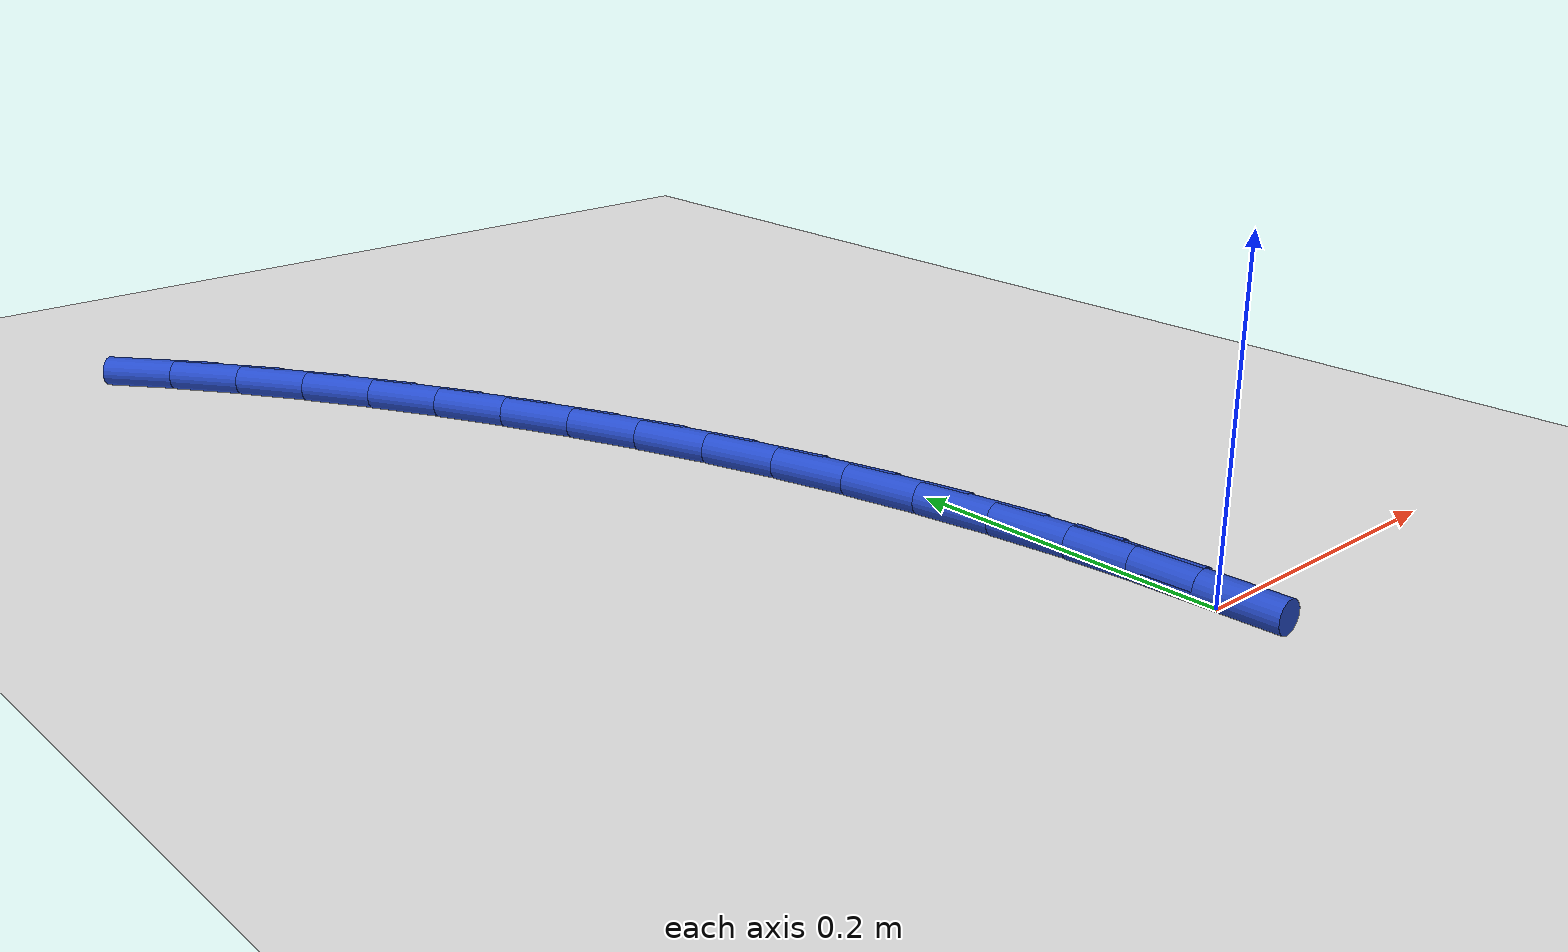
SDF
<sdf version="1.6">
 <world name="default">
  <model name="ground_plane">
   <static>1</static>
   <link name="link">
    <collision name="collision">
     <geometry><plane><normal>0 0 1</normal><size>100 100</size></plane></geometry>
     <surface><friction><ode><mu>100</mu><mu2>50</mu2></ode></friction></surface>
    </collision>
    <visual name="visual">
     <cast_shadows>0</cast_shadows>
     <geometry><plane><normal>0 0 1</normal><size>100 100</size></plane></geometry>
     <material>
      <script><uri>file://media/materials/scripts/gazebo.material</uri><name>Gazebo/WhiteGlow</name></script>
     </material>
    </visual>
   </link>
  </model>
  <model name="line">
   <link name="link_1">
    <pose>-0.0018602273220147247 0.0495987099844681 0.01 0 1.57 -1.4833174600700507</pose>
    <collision name="collision">
     <geometry><cylinder><radius>0.01</radius><length>0.08</length></cylinder></geometry>
    </collision>
    <visual name="visual">
     <material>
      <script><name>Gazebo/Blue</name><uri>file://media/materials/scripts/gazebo.material</uri></script>
     </material>
     <geometry><cylinder><radius>0.01</radius><length>0.08</length></cylinder></geometry>
    </visual>
   </link>
   <link name="link_2">
    <pose>-0.006178268365981738 0.09883369557249982 0.01 0 1.57 -1.4345817801698275</pose>
    <collision name="collision">
     <geometry><cylinder><radius>0.01</radius><length>0.08</length></cylinder></geometry>
    </collision>
    <visual name="visual">
     <material>
      <script><name>Gazebo/Blue</name><uri>file://media/materials/scripts/gazebo.material</uri></script>
     </material>
     <geometry><cylinder><radius>0.01</radius><length>0.08</length></cylinder></geometry>
    </visual>
   </link>
   <link name="link_3">
    <pose>-0.01287644401805767 0.14770290668139474 0.01 0 1.57 -1.3873089182403966</pose>
    <collision name="collision">
     <geometry><cylinder><radius>0.01</radius><length>0.08</length></cylinder></geometry>
    </collision>
    <visual name="visual">
     <material>
      <script><name>Gazebo/Blue</name><uri>file://media/materials/scripts/gazebo.material</uri></script>
     </material>
     <geometry><cylinder><radius>0.01</radius><length>0.08</length></cylinder></geometry>
    </visual>
   </link>
   <link name="link_4">
    <pose>-0.021877075164399205 0.1962042932284524 0.01 0 1.57 -1.3416684034358701</pose>
    <collision name="collision">
     <geometry><cylinder><radius>0.01</radius><length>0.08</length></cylinder></geometry>
    </collision>
    <visual name="visual">
     <material>
      <script><name>Gazebo/Blue</name><uri>file://media/materials/scripts/gazebo.material</uri></script>
     </material>
     <geometry><cylinder><radius>0.01</radius><length>0.08</length></cylinder></geometry>
    </visual>
   </link>
   <link name="link_5">
    <pose>-0.03310248269116302 0.2443358051309722 0.01 0 1.57 -1.2977911111290625</pose>
    <collision name="collision">
     <geometry><cylinder><radius>0.01</radius><length>0.08</length></cylinder></geometry>
    </collision>
    <visual name="visual">
     <material>
      <script><name>Gazebo/Blue</name><uri>file://media/materials/scripts/gazebo.material</uri></script>
     </material>
     <geometry><cylinder><radius>0.01</radius><length>0.08</length></cylinder></geometry>
    </visual>
   </link>
   <link name="link_6">
    <pose>-0.04647498748450581 0.29209539230625375 0.01 0 1.57 -1.255770619409367</pose>
    <collision name="collision">
     <geometry><cylinder><radius>0.01</radius><length>0.08</length></cylinder></geometry>
    </collision>
    <visual name="visual">
     <material>
      <script><name>Gazebo/Blue</name><uri>file://media/materials/scripts/gazebo.material</uri></script>
     </material>
     <geometry><cylinder><radius>0.01</radius><length>0.08</length></cylinder></geometry>
    </visual>
   </link>
   <link name="link_7">
    <pose>-0.061916910430584234 0.3394810046715964 0.01 0 1.57 -1.2156660414028329</pose>
    <collision name="collision">
     <geometry><cylinder><radius>0.01</radius><length>0.08</length></cylinder></geometry>
    </collision>
    <visual name="visual">
     <material>
      <script><name>Gazebo/Blue</name><uri>file://media/materials/scripts/gazebo.material</uri></script>
     </material>
     <geometry><cylinder><radius>0.01</radius><length>0.08</length></cylinder></geometry>
    </visual>
   </link>
   <link name="link_8">
    <pose>-0.07935057241555499 0.38649059214429987 0.01 0 1.57 -1.1775058526492614</pose>
    <collision name="collision">
     <geometry><cylinder><radius>0.01</radius><length>0.08</length></cylinder></geometry>
    </collision>
    <visual name="visual">
     <material>
      <script><name>Gazebo/Blue</name><uri>file://media/materials/scripts/gazebo.material</uri></script>
     </material>
     <geometry><cylinder><radius>0.01</radius><length>0.08</length></cylinder></geometry>
    </visual>
   </link>
   <link name="link_9">
    <pose>-0.09869829432557475 0.43312210464166345 0.01 0 1.57 -1.1408050658484743</pose>
    <collision name="collision">
     <geometry><cylinder><radius>0.01</radius><length>0.08</length></cylinder></geometry>
    </collision>
    <visual name="visual">
     <material>
      <script><name>Gazebo/Blue</name><uri>file://media/materials/scripts/gazebo.material</uri></script>
     </material>
     <geometry><cylinder><radius>0.01</radius><length>0.08</length></cylinder></geometry>
    </visual>
   </link>
   <link name="link_10">
    <pose>-0.11989256357617334 0.4793362051244956 0.01 0 1.57 -1.103372057153485</pose>
    <collision name="collision">
     <geometry><cylinder><radius>0.01</radius><length>0.08</length></cylinder></geometry>
    </collision>
    <visual name="visual">
     <material>
      <script><name>Gazebo/Blue</name><uri>file://media/materials/scripts/gazebo.material</uri></script>
     </material>
     <geometry><cylinder><radius>0.01</radius><length>0.08</length></cylinder></geometry>
    </visual>
   </link>
   <link name="link_11">
    <pose>-0.1429085849492884 0.5249368855281061 0.01 0 1.57 -1.064329445693956</pose>
    <collision name="collision">
     <geometry><cylinder><radius>0.01</radius><length>0.08</length></cylinder></geometry>
    </collision>
    <visual name="visual">
     <material>
      <script><name>Gazebo/Blue</name><uri>file://media/materials/scripts/gazebo.material</uri></script>
     </material>
     <geometry><cylinder><radius>0.01</radius><length>0.08</length></cylinder></geometry>
    </visual>
   </link>
   <link name="link_12">
    <pose>-0.16773278098538216 0.5696869953232829 0.01 0 1.57 -1.0233111332169653</pose>
    <collision name="collision">
     <geometry><cylinder><radius>0.01</radius><length>0.08</length></cylinder></geometry>
    </collision>
    <visual name="visual">
     <material>
      <script><name>Gazebo/Blue</name><uri>file://media/materials/scripts/gazebo.material</uri></script>
     </material>
     <geometry><cylinder><radius>0.01</radius><length>0.08</length></cylinder></geometry>
    </visual>
   </link>
   <link name="link_13">
    <pose>-0.19435157427204944 0.6133493838079518 0.01 0 1.57 -0.9799407837961018</pose>
    <collision name="collision">
     <geometry><cylinder><radius>0.01</radius><length>0.08</length></cylinder></geometry>
    </collision>
    <visual name="visual">
     <material>
      <script><name>Gazebo/Blue</name><uri>file://media/materials/scripts/gazebo.material</uri></script>
     </material>
     <geometry><cylinder><radius>0.01</radius><length>0.08</length></cylinder></geometry>
    </visual>
   </link>
   <link name="link_14">
    <pose>-0.2227513873968846 0.6556869002800372 0.01 0 1.57 -0.9338307504049684</pose>
    <collision name="collision">
     <geometry><cylinder><radius>0.01</radius><length>0.08</length></cylinder></geometry>
    </collision>
    <visual name="visual">
     <material>
      <script><name>Gazebo/Blue</name><uri>file://media/materials/scripts/gazebo.material</uri></script>
     </material>
     <geometry><cylinder><radius>0.01</radius><length>0.08</length></cylinder></geometry>
    </visual>
   </link>
   <link name="link_15">
    <pose>-0.25291864294748256 0.6964623940374646 0.01 0 1.57 -0.884584373394327</pose>
    <collision name="collision">
     <geometry><cylinder><radius>0.01</radius><length>0.08</length></cylinder></geometry>
    </collision>
    <visual name="visual">
     <material>
      <script><name>Gazebo/Blue</name><uri>file://media/materials/scripts/gazebo.material</uri></script>
     </material>
     <geometry><cylinder><radius>0.01</radius><length>0.08</length></cylinder></geometry>
    </visual>
   </link>
   <link name="link_140">
    <pose>5.0306980803327406e-17 2.498001805406602e-16 0.01 0 1.57 -1.5330564088056713</pose>
    <collision name="collision">
     <geometry><cylinder><radius>0.01</radius><length>0.08</length></cylinder></geometry>
    </collision>
    <visual name="visual">
     <material>
      <script><name>Gazebo/Blue</name><uri>file://media/materials/scripts/gazebo.material</uri></script>
     </material>
     <geometry><cylinder><radius>0.01</radius><length>0.08</length></cylinder></geometry>
    </visual>
   </link>
   <link name="link_141">
    <pose>-0.001871225869173869 0.04955859704815229 0.01 0 1.57 -1.5330564088056717</pose>
    <collision name="collision">
     <geometry><cylinder><radius>0.01</radius><length>0.08</length></cylinder></geometry>
    </collision>
    <visual name="visual">
     <material>
      <script><name>Gazebo/Blue</name><uri>file://media/materials/scripts/gazebo.material</uri></script>
     </material>
     <geometry><cylinder><radius>0.01</radius><length>0.08</length></cylinder></geometry>
    </visual>
   </link>
  </model>
 </world>
</sdf>
